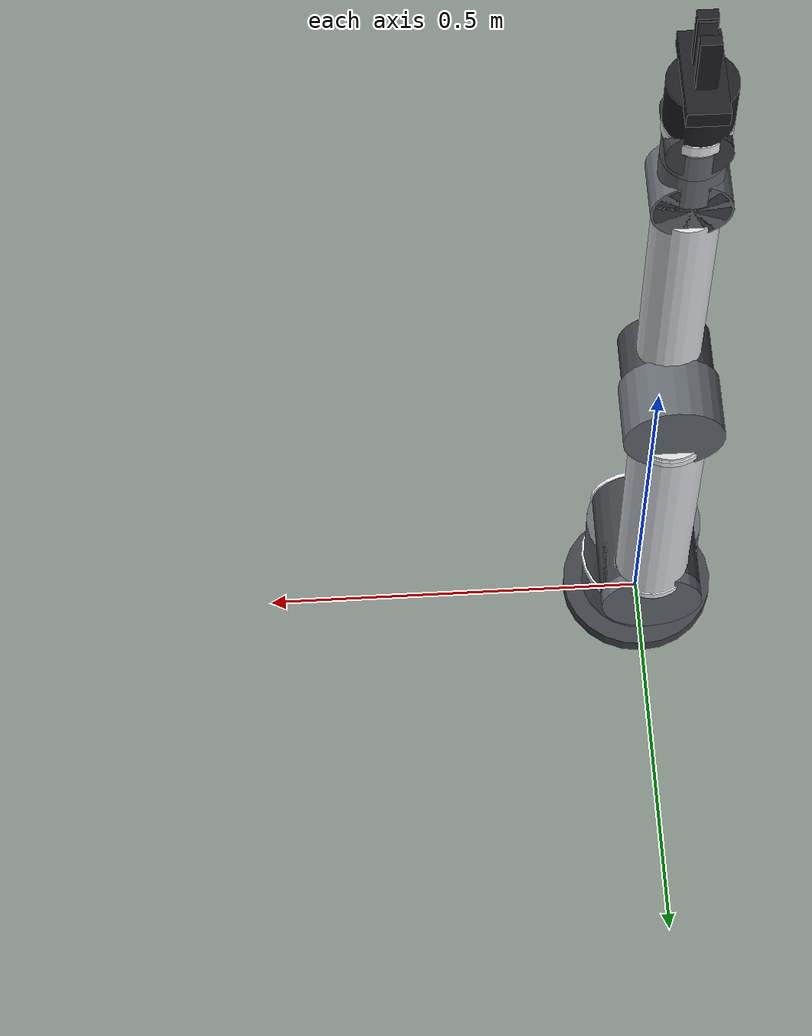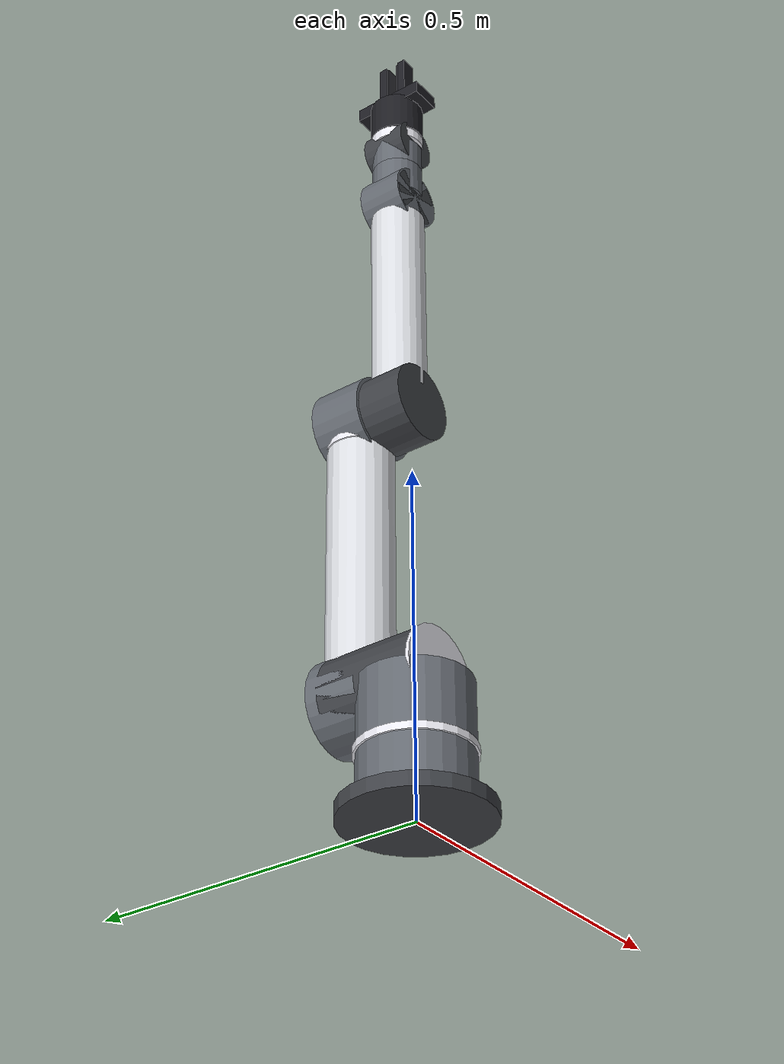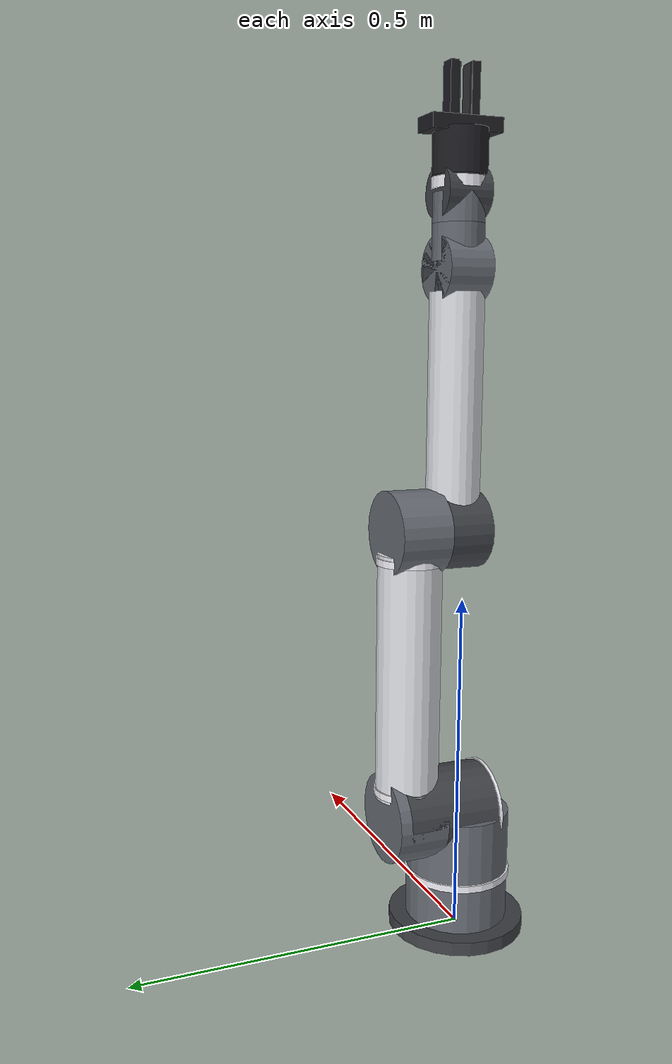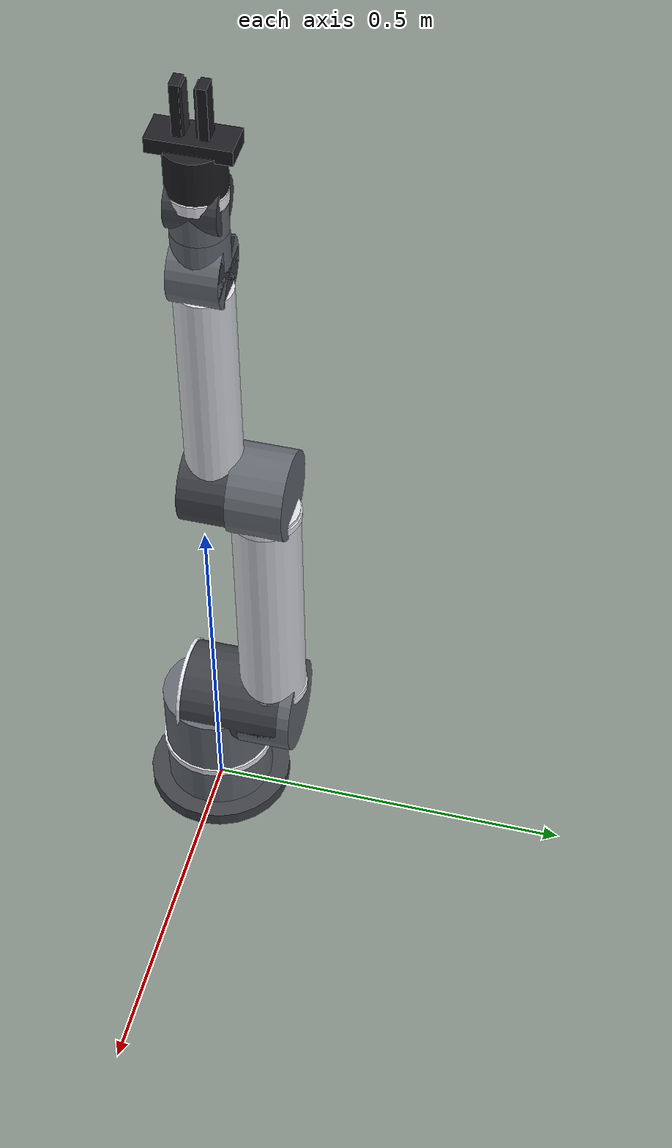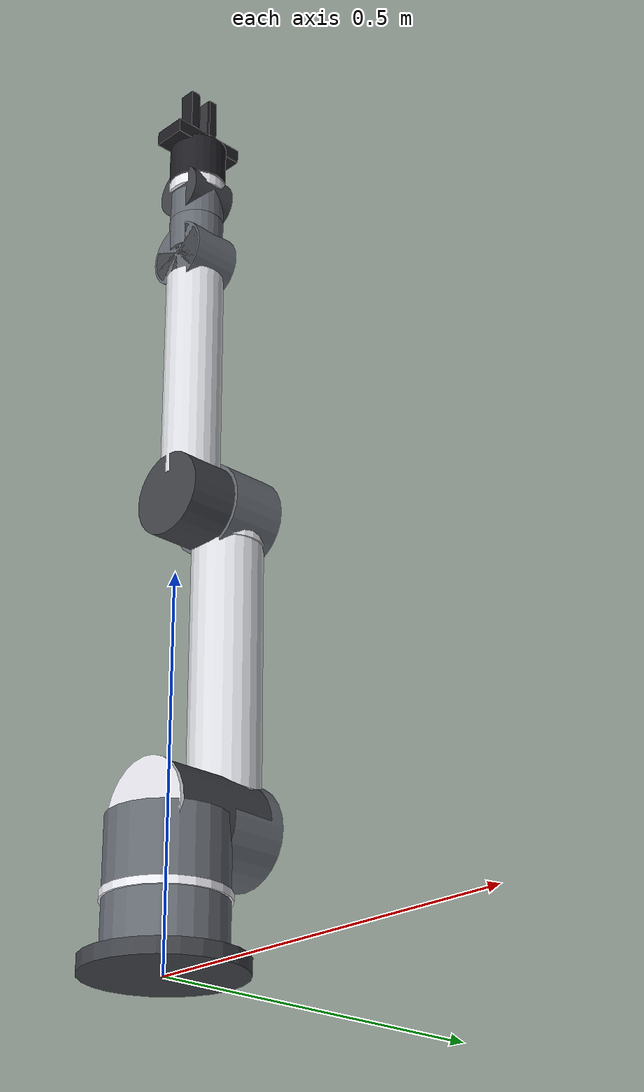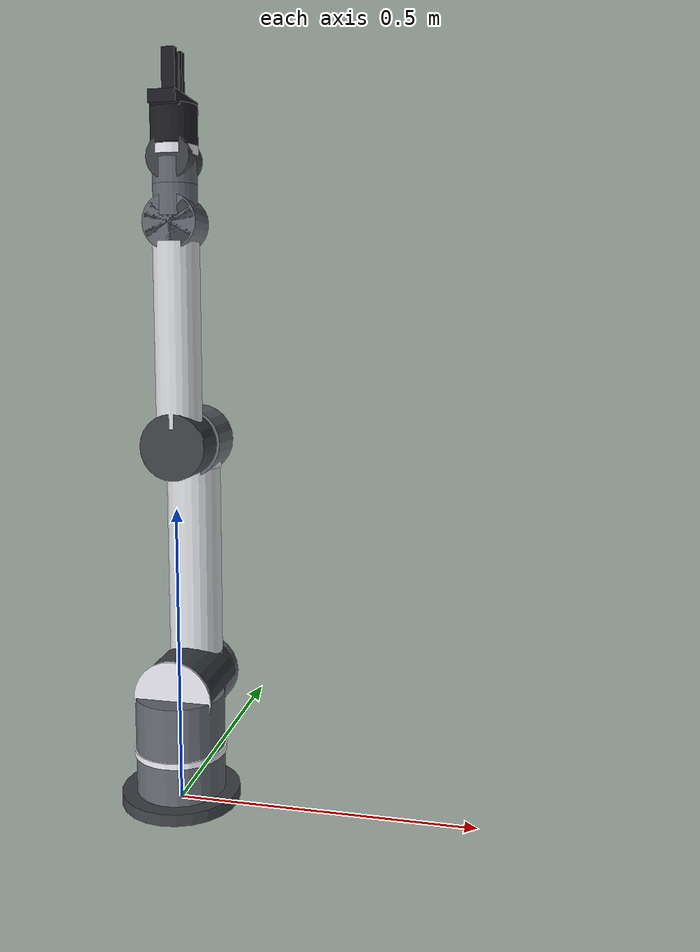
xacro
<?xml version="1.0"?>
<robot name="synora_robot_arm" xmlns:xacro="http://www.ros.org/wiki/xacro">

  <!-- Arguments -->
  <xacro:arg name="controllers_file" default="$(find synora_robot_arm)/config/robot_controllers.yaml" />

  <!-- Include ros2_control macro -->
  <xacro:include filename="ros2_control.xacro" />

  <!-- Color Definitions for RViz (Universal Robots + Robotiq Theme) -->
  <material name="ur_aluminum">
    <color rgba="0.86 0.87 0.89 1.0"/>
  </material>
  <material name="ur_joint_gray">
    <color rgba="0.40 0.42 0.45 1.0"/>
  </material>
  <material name="ur_joint_dark">
    <color rgba="0.25 0.26 0.28 1.0"/>
  </material>
  <material name="gripper_body_black">
    <color rgba="0.12 0.12 0.14 1.0"/>
  </material>
  <material name="gripper_pad_black">
    <color rgba="0.20 0.20 0.22 1.0"/>
  </material>
  <material name="accent_silver">
    <color rgba="0.92 0.92 0.95 1.0"/>
  </material>

  <!-- World Anchor Frame -->
  <link name="world"/>

  <!-- Fixed Joint: World to Base -->
  <joint name="world_to_base" type="fixed">
    <parent link="world"/>
    <child link="base_link"/>
    <origin xyz="0 0 0" rpy="0 0 0"/>
  </joint>

  <!-- 1. BASE LINK (Pedestal with Mounting Flange Ring)         -->
  <link name="base_link">
    <!-- Base Mounting Flange Disc -->
    <visual>
      <origin xyz="0 0 0.01" rpy="0 0 0"/>
      <geometry>
        <cylinder radius="0.10" length="0.02"/>
      </geometry>
      <material name="ur_joint_dark"/>
    </visual>
    <!-- Base Pedestal Cylinder -->
    <visual>
      <origin xyz="0 0 0.05" rpy="0 0 0"/>
      <geometry>
        <cylinder radius="0.075" length="0.08"/>
      </geometry>
      <material name="ur_joint_gray"/>
    </visual>
    <!-- Top Chamfer Ring -->
    <visual>
      <origin xyz="0 0 0.09" rpy="0 0 0"/>
      <geometry>
        <cylinder radius="0.078" length="0.01"/>
      </geometry>
      <material name="accent_silver"/>
    </visual>
    <collision>
      <origin xyz="0 0 0.05" rpy="0 0 0"/>
      <geometry>
        <cylinder radius="0.085" length="0.10"/>
      </geometry>
    </collision>
    <inertial>
      <origin xyz="0 0 0.05" rpy="0 0 0"/>
      <mass value="4.0"/>
      <inertia ixx="0.0085" ixy="0.0" ixz="0.0"
               iyy="0.0085" iyz="0.0" izz="0.0128"/>
    </inertial>
  </link>

  <!-- JOINT 1: Shoulder Pan (Base Yaw around Z)                 -->
  <joint name="shoulder_pan_joint" type="revolute">
    <parent link="base_link"/>
    <child link="shoulder_link"/>
    <origin xyz="0 0 0.095" rpy="0 0 0"/>
    <axis xyz="0 0 1"/>
    <limit lower="-3.14159" upper="3.14159" effort="150.0" velocity="3.14"/>
    <dynamics damping="0.8" friction="0.2"/>
  </joint>

  <!-- 2. SHOULDER LINK (Cobot Turret with Transverse Actuator)  -->
  <link name="shoulder_link">
    <!-- Vertical Rotating Turret Base -->
    <visual>
      <origin xyz="0 0 0.045" rpy="0 0 0"/>
      <geometry>
        <cylinder radius="0.075" length="0.09"/>
      </geometry>
      <material name="ur_joint_gray"/>
    </visual>
    <!-- Transverse Shoulder Pivot Motor Cylinder (Offset along Y) -->
    <visual>
      <origin xyz="0 0.035 0.09" rpy="1.5708 0 0"/>
      <geometry>
        <cylinder radius="0.065" length="0.14"/>
      </geometry>
      <material name="ur_joint_dark"/>
    </visual>
    <!-- Joint Decorative Cap Ring -->
    <visual>
      <origin xyz="0 -0.036 0.09" rpy="1.5708 0 0"/>
      <geometry>
        <cylinder radius="0.067" length="0.005"/>
      </geometry>
      <material name="accent_silver"/>
    </visual>
    <collision>
      <origin xyz="0 0.02 0.07" rpy="0 0 0"/>
      <geometry>
        <cylinder radius="0.08" length="0.14"/>
      </geometry>
    </collision>
    <inertial>
      <origin xyz="0 0.02 0.07" rpy="0 0 0"/>
      <mass value="3.5"/>
      <inertia ixx="0.0090" ixy="0.0" ixz="0.0"
               iyy="0.0090" iyz="0.0" izz="0.0098"/>
    </inertial>
  </link>

  <!-- JOINT 2: Shoulder Lift (Pitch around Y)                   -->
  <joint name="shoulder_lift_joint" type="revolute">
    <parent link="shoulder_link"/>
    <child link="upper_arm_link"/>
    <origin xyz="0 0.085 0.09" rpy="0 0 0"/>
    <axis xyz="0 1 0"/>
    <limit lower="-3.14159" upper="3.14159" effort="150.0" velocity="3.14"/>
    <dynamics damping="0.8" friction="0.2"/>
  </joint>

  <!-- 3. UPPER ARM LINK (Cobot Aluminum Tube with Joint Hubs)   -->
  <link name="upper_arm_link">
    <!-- Shoulder End Cap / Joint Collar -->
    <visual>
      <origin xyz="0 0 0.0" rpy="1.5708 0 0"/>
      <geometry>
        <cylinder radius="0.065" length="0.075"/>
      </geometry>
      <material name="ur_joint_gray"/>
    </visual>
    <!-- Main Anodized Aluminum Arm Tube -->
    <visual>
      <origin xyz="0 0 0.21" rpy="0 0 0"/>
      <geometry>
        <cylinder radius="0.046" length="0.36"/>
      </geometry>
      <material name="ur_aluminum"/>
    </visual>
    <!-- Elbow End Cap / Joint Collar -->
    <visual>
      <origin xyz="0 0 0.42" rpy="1.5708 0 0"/>
      <geometry>
        <cylinder radius="0.060" length="0.075"/>
      </geometry>
      <material name="ur_joint_gray"/>
    </visual>
    <!-- Aluminum Joint Ring Accents -->
    <visual>
      <origin xyz="0 0 0.04" rpy="0 0 0"/>
      <geometry>
        <cylinder radius="0.048" length="0.01"/>
      </geometry>
      <material name="accent_silver"/>
    </visual>
    <visual>
      <origin xyz="0 0 0.38" rpy="0 0 0"/>
      <geometry>
        <cylinder radius="0.048" length="0.01"/>
      </geometry>
      <material name="accent_silver"/>
    </visual>
    <collision>
      <origin xyz="0 0 0.21" rpy="0 0 0"/>
      <geometry>
        <cylinder radius="0.055" length="0.42"/>
      </geometry>
    </collision>
    <inertial>
      <origin xyz="0 0 0.21" rpy="0 0 0"/>
      <mass value="3.0"/>
      <inertia ixx="0.0415" ixy="0.0" ixz="0.0"
               iyy="0.0415" iyz="0.0" izz="0.0030"/>
    </inertial>
  </link>

  <!-- JOINT 3: Elbow (Pitch around Y)                           -->
  <joint name="elbow_joint" type="revolute">
    <parent link="upper_arm_link"/>
    <child link="forearm_link"/>
    <origin xyz="0 -0.065 0.42" rpy="0 0 0"/>
    <axis xyz="0 1 0"/>
    <limit lower="-3.14159" upper="3.14159" effort="120.0" velocity="3.14"/>
    <dynamics damping="0.6" friction="0.15"/>
  </joint>

  <!-- 4. FOREARM LINK (Cobot Aluminum Tube)                    -->
  <link name="forearm_link">
    <!-- Elbow Joint Housing Cylinder -->
    <visual>
      <origin xyz="0 0 0.0" rpy="1.5708 0 0"/>
      <geometry>
        <cylinder radius="0.055" length="0.075"/>
      </geometry>
      <material name="ur_joint_dark"/>
    </visual>
    <!-- Forearm Anodized Aluminum Tube -->
    <visual>
      <origin xyz="0 0 0.18" rpy="0 0 0"/>
      <geometry>
        <cylinder radius="0.038" length="0.30"/>
      </geometry>
      <material name="ur_aluminum"/>
    </visual>
    <!-- Wrist 1 Mounting Collar -->
    <visual>
      <origin xyz="0 0 0.36" rpy="1.5708 0 0"/>
      <geometry>
        <cylinder radius="0.045" length="0.065"/>
      </geometry>
      <material name="ur_joint_gray"/>
    </visual>
    <collision>
      <origin xyz="0 0 0.18" rpy="0 0 0"/>
      <geometry>
        <cylinder radius="0.045" length="0.36"/>
      </geometry>
    </collision>
    <inertial>
      <origin xyz="0 0 0.18" rpy="0 0 0"/>
      <mass value="2.0"/>
      <inertia ixx="0.0210" ixy="0.0" ixz="0.0"
               iyy="0.0210" iyz="0.0" izz="0.0014"/>
    </inertial>
  </link>

  <!-- JOINT 4: Wrist 1 (Wrist Pitch around Y)                   -->
  <joint name="wrist_1_joint" type="revolute">
    <parent link="forearm_link"/>
    <child link="wrist_1_link"/>
    <origin xyz="0 0 0.36" rpy="0 0 0"/>
    <axis xyz="0 1 0"/>
    <limit lower="-3.14159" upper="3.14159" effort="50.0" velocity="3.2"/>
    <dynamics damping="0.3" friction="0.1"/>
  </joint>

  <!-- 5. WRIST 1 LINK                                           -->
  <link name="wrist_1_link">
    <!-- Cross Pivot Cylinder -->
    <visual>
      <origin xyz="0 0 0.0" rpy="1.5708 0 0"/>
      <geometry>
        <cylinder radius="0.042" length="0.065"/>
      </geometry>
      <material name="ur_joint_dark"/>
    </visual>
    <!-- Vertical Neck -->
    <visual>
      <origin xyz="0 0 0.035" rpy="0 0 0"/>
      <geometry>
        <cylinder radius="0.036" length="0.05"/>
      </geometry>
      <material name="ur_joint_gray"/>
    </visual>
    <collision>
      <origin xyz="0 0 0.03" rpy="0 0 0"/>
      <geometry>
        <cylinder radius="0.04" length="0.06"/>
      </geometry>
    </collision>
    <inertial>
      <origin xyz="0 0 0.03" rpy="0 0 0"/>
      <mass value="0.8"/>
      <inertia ixx="0.00050" ixy="0.0" ixz="0.0"
               iyy="0.00050" iyz="0.0" izz="0.00049"/>
    </inertial>
  </link>

  <!-- JOINT 5: Wrist 2 (Wrist Yaw around Z)                     -->
  <joint name="wrist_2_joint" type="revolute">
    <parent link="wrist_1_link"/>
    <child link="wrist_2_link"/>
    <origin xyz="0 0 0.06" rpy="0 0 0"/>
    <axis xyz="0 0 1"/>
    <limit lower="-3.14159" upper="3.14159" effort="40.0" velocity="3.2"/>
    <dynamics damping="0.2" friction="0.08"/>
  </joint>

  <!-- 6. WRIST 2 LINK                                           -->
  <link name="wrist_2_link">
    <visual>
      <origin xyz="0 0 0.02" rpy="0 0 0"/>
      <geometry>
        <cylinder radius="0.036" length="0.04"/>
      </geometry>
      <material name="ur_joint_gray"/>
    </visual>
    <visual>
      <origin xyz="0 0 0.04" rpy="1.5708 0 0"/>
      <geometry>
        <cylinder radius="0.036" length="0.065"/>
      </geometry>
      <material name="ur_joint_dark"/>
    </visual>
    <collision>
      <origin xyz="0 0 0.025" rpy="0 0 0"/>
      <geometry>
        <cylinder radius="0.038" length="0.05"/>
      </geometry>
    </collision>
    <inertial>
      <origin xyz="0 0 0.025" rpy="0 0 0"/>
      <mass value="0.6"/>
      <inertia ixx="0.00030" ixy="0.0" ixz="0.0"
               iyy="0.00030" iyz="0.0" izz="0.00036"/>
    </inertial>
  </link>

  <!-- JOINT 6: Wrist 3 (Tool Roll / Spin around Z)              -->
  <joint name="wrist_3_joint" type="revolute">
    <parent link="wrist_2_link"/>
    <child link="wrist_3_link"/>
    <origin xyz="0 0 0.045" rpy="0 0 0"/>
    <axis xyz="0 0 1"/>
    <limit lower="-3.14159" upper="3.14159" effort="30.0" velocity="3.5"/>
    <dynamics damping="0.1" friction="0.05"/>
  </joint>

  <!-- 7. WRIST 3 LINK (Tool Mounting Flange Disc)               -->
  <link name="wrist_3_link">
    <visual>
      <origin xyz="0 0 0.0075" rpy="0 0 0"/>
      <geometry>
        <cylinder radius="0.038" length="0.015"/>
      </geometry>
      <material name="accent_silver"/>
    </visual>
    <visual>
      <origin xyz="0 0 0.015" rpy="0 0 0"/>
      <geometry>
        <cylinder radius="0.034" length="0.004"/>
      </geometry>
      <material name="ur_joint_dark"/>
    </visual>
    <collision>
      <origin xyz="0 0 0.008" rpy="0 0 0"/>
      <geometry>
        <cylinder radius="0.038" length="0.016"/>
      </geometry>
    </collision>
    <inertial>
      <origin xyz="0 0 0.008" rpy="0 0 0"/>
      <mass value="0.3"/>
      <inertia ixx="0.00011" ixy="0.0" ixz="0.0"
               iyy="0.00011" iyz="0.0" izz="0.00021"/>
    </inertial>
  </link>

  <!-- FIXED TOOL JOINT: Flange to Gripper Body                  -->
  <joint name="wrist_to_tool_joint" type="fixed">
    <parent link="wrist_3_link"/>
    <child link="tool_link"/>
    <origin xyz="0 0 0.017" rpy="0 0 0"/>
  </joint>

  <!-- 8. TOOL LINK (Robotiq 2F-85 Style Industrial Gripper)     -->
  <link name="tool_link">
    <!-- Main Gripper Palm Housing (Black Tapered Chassis) -->
    <visual>
      <origin xyz="0 0 0.03" rpy="0 0 0"/>
      <geometry>
        <cylinder radius="0.038" length="0.06"/>
      </geometry>
      <material name="gripper_body_black"/>
    </visual>
    <!-- Finger Mounting Actuator Bracket -->
    <visual>
      <origin xyz="0 0 0.065" rpy="0 0 0"/>
      <geometry>
        <box size="0.045 0.105 0.02"/>
      </geometry>
      <material name="gripper_body_black"/>
    </visual>
    <collision>
      <origin xyz="0 0 0.04" rpy="0 0 0"/>
      <geometry>
        <box size="0.05 0.11 0.08"/>
      </geometry>
    </collision>
    <inertial>
      <origin xyz="0 0 0.04" rpy="0 0 0"/>
      <mass value="0.5"/>
      <inertia ixx="0.00060" ixy="0.0" ixz="0.0"
               iyy="0.00025" iyz="0.0" izz="0.00065"/>
    </inertial>
  </link>

  <!-- GRIPPER JOINTS (Dual Symmetrical Prismatic Sliding)       -->
  <!-- Left Finger Joint (Moves +Y outward when opening) -->
  <joint name="left_finger_joint" type="prismatic">
    <parent link="tool_link"/>
    <child link="left_finger_link"/>
    <origin xyz="0 0.010 0.075" rpy="0 0 0"/>
    <axis xyz="0 1 0"/>
    <limit lower="0.0" upper="0.035" effort="40.0" velocity="0.12"/>
    <dynamics damping="0.2" friction="0.08"/>
  </joint>

  <!-- 9. Left Finger Link (Robotiq-style Articulated Knuckle) -->
  <link name="left_finger_link">
    <!-- Finger Knuckle Bar -->
    <visual>
      <origin xyz="0 0.006 0.035" rpy="0 0 0"/>
      <geometry>
        <box size="0.022 0.012 0.07"/>
      </geometry>
      <material name="gripper_body_black"/>
    </visual>
    <!-- Inner High-Friction Grip Pad -->
    <visual>
      <origin xyz="0 -0.001 0.035" rpy="0 0 0"/>
      <geometry>
        <box size="0.020 0.004 0.065"/>
      </geometry>
      <material name="gripper_pad_black"/>
    </visual>
    <collision>
      <origin xyz="0 0.005 0.035" rpy="0 0 0"/>
      <geometry>
        <box size="0.024 0.014 0.07"/>
      </geometry>
    </collision>
    <inertial>
      <origin xyz="0 0.005 0.035" rpy="0 0 0"/>
      <mass value="0.06"/>
      <inertia ixx="0.000035" ixy="0.0" ixz="0.0"
               iyy="0.000038" iyz="0.0" izz="0.000008"/>
    </inertial>
  </link>

  <!-- Right Finger Joint (Moves -Y outward when opening) -->
  <joint name="right_finger_joint" type="prismatic">
    <parent link="tool_link"/>
    <child link="right_finger_link"/>
    <origin xyz="0 -0.010 0.075" rpy="0 0 0"/>
    <axis xyz="0 -1 0"/>
    <limit lower="0.0" upper="0.035" effort="40.0" velocity="0.12"/>
    <dynamics damping="0.2" friction="0.08"/>
  </joint>

  <!-- 10. Right Finger Link -->
  <link name="right_finger_link">
    <!-- Finger Knuckle Bar -->
    <visual>
      <origin xyz="0 -0.006 0.035" rpy="0 0 0"/>
      <geometry>
        <box size="0.022 0.012 0.07"/>
      </geometry>
      <material name="gripper_body_black"/>
    </visual>
    <!-- Inner High-Friction Grip Pad -->
    <visual>
      <origin xyz="0 0.001 0.035" rpy="0 0 0"/>
      <geometry>
        <box size="0.020 0.004 0.065"/>
      </geometry>
      <material name="gripper_pad_black"/>
    </visual>
    <collision>
      <origin xyz="0 -0.005 0.035" rpy="0 0 0"/>
      <geometry>
        <box size="0.024 0.014 0.07"/>
      </geometry>
    </collision>
    <inertial>
      <origin xyz="0 -0.005 0.035" rpy="0 0 0"/>
      <mass value="0.06"/>
      <inertia ixx="0.000035" ixy="0.0" ixz="0.0"
               iyy="0.000038" iyz="0.0" izz="0.000008"/>
    </inertial>
  </link>

  <!-- Gazebo Simulation Materials (Harmonic Realistic PBR)      -->
  <gazebo reference="base_link">
    <visual>
      <material>
        <ambient>0.40 0.42 0.45 1</ambient>
        <diffuse>0.40 0.42 0.45 1</diffuse>
        <specular>0.6 0.6 0.6 1</specular>
      </material>
    </visual>
  </gazebo>

  <gazebo reference="shoulder_link">
    <visual>
      <material>
        <ambient>0.40 0.42 0.45 1</ambient>
        <diffuse>0.40 0.42 0.45 1</diffuse>
        <specular>0.6 0.6 0.6 1</specular>
      </material>
    </visual>
  </gazebo>

  <gazebo reference="upper_arm_link">
    <visual>
      <material>
        <ambient>0.86 0.87 0.89 1</ambient>
        <diffuse>0.86 0.87 0.89 1</diffuse>
        <specular>0.9 0.9 0.9 1</specular>
      </material>
    </visual>
  </gazebo>

  <gazebo reference="forearm_link">
    <visual>
      <material>
        <ambient>0.86 0.87 0.89 1</ambient>
        <diffuse>0.86 0.87 0.89 1</diffuse>
        <specular>0.9 0.9 0.9 1</specular>
      </material>
    </visual>
  </gazebo>

  <gazebo reference="wrist_1_link">
    <visual>
      <material>
        <ambient>0.40 0.42 0.45 1</ambient>
        <diffuse>0.40 0.42 0.45 1</diffuse>
        <specular>0.6 0.6 0.6 1</specular>
      </material>
    </visual>
  </gazebo>

  <gazebo reference="wrist_2_link">
    <visual>
      <material>
        <ambient>0.40 0.42 0.45 1</ambient>
        <diffuse>0.40 0.42 0.45 1</diffuse>
        <specular>0.6 0.6 0.6 1</specular>
      </material>
    </visual>
  </gazebo>

  <gazebo reference="wrist_3_link">
    <visual>
      <material>
        <ambient>0.86 0.87 0.89 1</ambient>
        <diffuse>0.86 0.87 0.89 1</diffuse>
        <specular>0.9 0.9 0.9 1</specular>
      </material>
    </visual>
  </gazebo>

  <gazebo reference="tool_link">
    <visual>
      <material>
        <ambient>0.12 0.12 0.14 1</ambient>
        <diffuse>0.12 0.12 0.14 1</diffuse>
        <specular>0.4 0.4 0.4 1</specular>
      </material>
    </visual>
  </gazebo>

  <gazebo reference="left_finger_link">
    <collision>
      <surface>
        <friction>
          <ode>
            <mu>10.0</mu>
            <mu2>10.0</mu2>
          </ode>
        </friction>
        <contact>
          <ode>
            <min_depth>0.002</min_depth>
            <kp>1000000.0</kp>
            <kd>1.0</kd>
          </ode>
        </contact>
      </surface>
    </collision>
    <visual>
      <material>
        <ambient>0.14 0.14 0.16 1</ambient>
        <diffuse>0.14 0.14 0.16 1</diffuse>
        <specular>0.4 0.4 0.4 1</specular>
      </material>
    </visual>
  </gazebo>

  <gazebo reference="right_finger_link">
    <collision>
      <surface>
        <friction>
          <ode>
            <mu>10.0</mu>
            <mu2>10.0</mu2>
          </ode>
        </friction>
        <contact>
          <ode>
            <min_depth>0.002</min_depth>
            <kp>1000000.0</kp>
            <kd>1.0</kd>
          </ode>
        </contact>
      </surface>
    </collision>
    <visual>
      <material>
        <ambient>0.14 0.14 0.16 1</ambient>
        <diffuse>0.14 0.14 0.16 1</diffuse>
        <specular>0.4 0.4 0.4 1</specular>
      </material>
    </visual>
  </gazebo>

  <!-- Instantiate ros2_control configuration -->
  <xacro:synora_robot_arm_ros2_control controllers_file="$(arg controllers_file)"/>

</robot>
